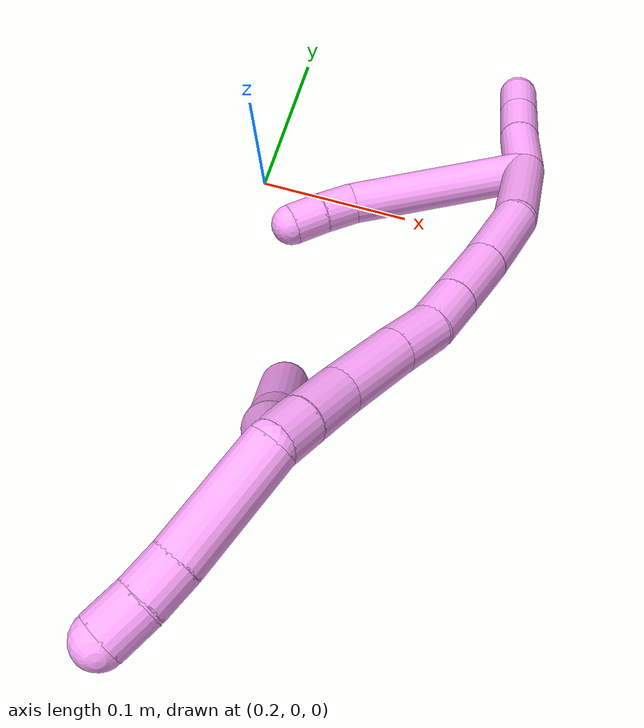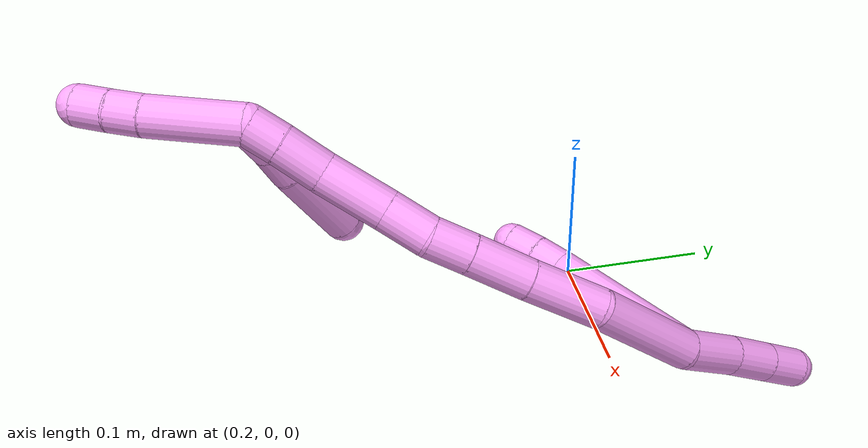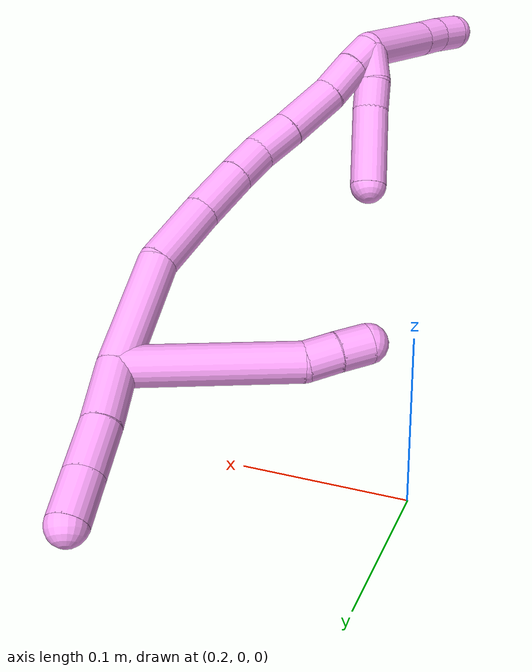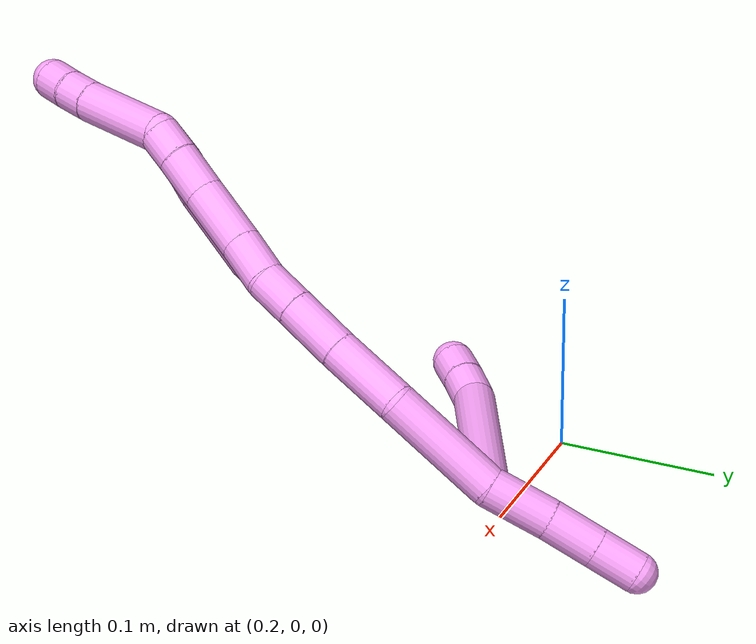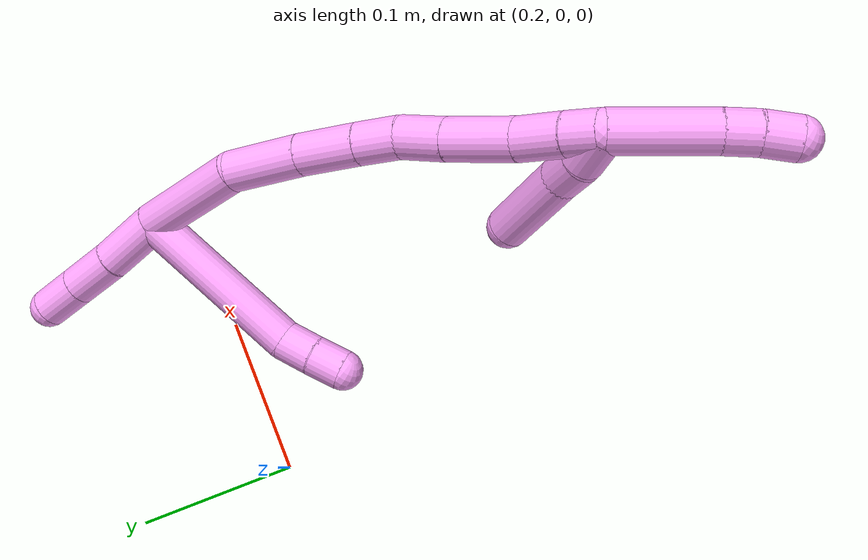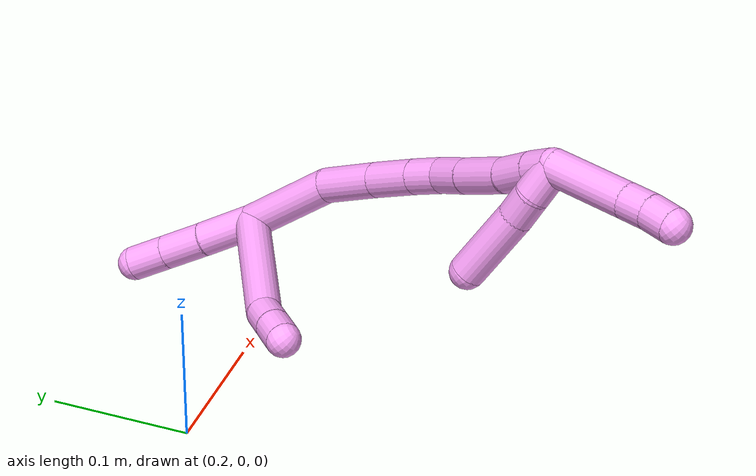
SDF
<sdf version="1.7">
 <world name="default">
  <model name="4">
   <static>0</static>
   <link name="4">
    <collision name="collision-cylinder-e_1_2_8">
     <pose>-0.007892 -0.053859 0.001302 1.54662 -0.145449 -0.141987</pose>
     <geometry><cylinder><radius>0.0125</radius><length>0.1089</length></cylinder></geometry>
     <surface>
      <friction><ode><mu>1.16</mu><mu2>1.16</mu2><slip1>0</slip1><slip2>0</slip2></ode></friction>
      <contact><ode><kp>1e+06</kp><kd>1</kd><max_vel>0</max_vel><min_depth>0.001</min_depth></ode></contact>
     </surface>
    </collision>
    <visual name="visual-cylinder-e_1_2_8">
     <pose>-0.007892 -0.053859 0.001302 1.54662 -0.145449 -0.141987</pose>
     <geometry><cylinder><radius>0.0125</radius><length>0.1089</length></cylinder></geometry>
     <material><ambient>1 0.65098 0.996078 1</ambient></material>
    </visual>
    <collision name="collision-cylinder-e_2_8_9">
     <pose>-0.017036 -0.117526 0.005836 1.25252 -0.120724 -0.087383</pose>
     <geometry><cylinder><radius>0.0125</radius><length>0.020804</length></cylinder></geometry>
     <surface>
      <friction><ode><mu>1.16</mu><mu2>1.16</mu2><slip1>0</slip1><slip2>0</slip2></ode></friction>
      <contact><ode><kp>1e+06</kp><kd>1</kd><max_vel>0</max_vel><min_depth>0.001</min_depth></ode></contact>
     </surface>
    </collision>
    <visual name="visual-cylinder-e_2_8_9">
     <pose>-0.017036 -0.117526 0.005836 1.25252 -0.120724 -0.087383</pose>
     <geometry><cylinder><radius>0.0125</radius><length>0.020804</length></cylinder></geometry>
     <material><ambient>1 0.65098 0.996078 1</ambient></material>
    </visual>
    <collision name="collision-cylinder-e_3_9_6">
     <pose>-0.018909 -0.137001 0.012091 1.26763 -0.061163 -0.04496</pose>
     <geometry><cylinder><radius>0.0125</radius><length>0.020296</length></cylinder></geometry>
     <surface>
      <friction><ode><mu>1.16</mu><mu2>1.16</mu2><slip1>0</slip1><slip2>0</slip2></ode></friction>
      <contact><ode><kp>1e+06</kp><kd>1</kd><max_vel>0</max_vel><min_depth>0.001</min_depth></ode></contact>
     </surface>
    </collision>
    <visual name="visual-cylinder-e_3_9_6">
     <pose>-0.018909 -0.137001 0.012091 1.26763 -0.061163 -0.04496</pose>
     <geometry><cylinder><radius>0.0125</radius><length>0.020296</length></cylinder></geometry>
     <material><ambient>1 0.65098 0.996078 1</ambient></material>
    </visual>
    <collision name="collision-cylinder-e_1_2_10">
     <pose>-0.004048 0.003961 -0.019162 -2.93776 -0.203997 1.57161</pose>
     <geometry><cylinder><radius>0.0125</radius><length>0.039962</length></cylinder></geometry>
     <surface>
      <friction><ode><mu>1.16</mu><mu2>1.16</mu2><slip1>0</slip1><slip2>0</slip2></ode></friction>
      <contact><ode><kp>1e+06</kp><kd>1</kd><max_vel>0</max_vel><min_depth>0.001</min_depth></ode></contact>
     </surface>
    </collision>
    <visual name="visual-cylinder-e_1_2_10">
     <pose>-0.004048 0.003961 -0.019162 -2.93776 -0.203997 1.57161</pose>
     <geometry><cylinder><radius>0.0125</radius><length>0.039962</length></cylinder></geometry>
     <material><ambient>1 0.65098 0.996078 1</ambient></material>
    </visual>
    <collision name="collision-cylinder-e_2_10_11">
     <pose>-0.010763 0.011961 -0.053492 -2.88132 -0.16831 1.14504</pose>
     <geometry><cylinder><radius>0.0125</radius><length>0.031845</length></cylinder></geometry>
     <surface>
      <friction><ode><mu>1.16</mu><mu2>1.16</mu2><slip1>0</slip1><slip2>0</slip2></ode></friction>
      <contact><ode><kp>1e+06</kp><kd>1</kd><max_vel>0</max_vel><min_depth>0.001</min_depth></ode></contact>
     </surface>
    </collision>
    <visual name="visual-cylinder-e_2_10_11">
     <pose>-0.010763 0.011961 -0.053492 -2.88132 -0.16831 1.14504</pose>
     <geometry><cylinder><radius>0.0125</radius><length>0.031845</length></cylinder></geometry>
     <material><ambient>1 0.65098 0.996078 1</ambient></material>
    </visual>
    <collision name="collision-cylinder-e_3_11_5">
     <pose>-0.015805 0.019569 -0.08209 -2.88188 -0.169304 1.15243</pose>
     <geometry><cylinder><radius>0.0125</radius><length>0.028193</length></cylinder></geometry>
     <surface>
      <friction><ode><mu>1.16</mu><mu2>1.16</mu2><slip1>0</slip1><slip2>0</slip2></ode></friction>
      <contact><ode><kp>1e+06</kp><kd>1</kd><max_vel>0</max_vel><min_depth>0.001</min_depth></ode></contact>
     </surface>
    </collision>
    <visual name="visual-cylinder-e_3_11_5">
     <pose>-0.015805 0.019569 -0.08209 -2.88188 -0.169304 1.15243</pose>
     <geometry><cylinder><radius>0.0125</radius><length>0.028193</length></cylinder></geometry>
     <material><ambient>1 0.65098 0.996078 1</ambient></material>
    </visual>
    <collision name="collision-cylinder-e_1_2_12">
     <pose>-0.000747 -0.010841 0.034449 0.304892 -0.02068 -0.003177</pose>
     <geometry><cylinder><radius>0.0125</radius><length>0.072245</length></cylinder></geometry>
     <surface>
      <friction><ode><mu>1.16</mu><mu2>1.16</mu2><slip1>0</slip1><slip2>0</slip2></ode></friction>
      <contact><ode><kp>1e+06</kp><kd>1</kd><max_vel>0</max_vel><min_depth>0.001</min_depth></ode></contact>
     </surface>
    </collision>
    <visual name="visual-cylinder-e_1_2_12">
     <pose>-0.000747 -0.010841 0.034449 0.304892 -0.02068 -0.003177</pose>
     <geometry><cylinder><radius>0.0125</radius><length>0.072245</length></cylinder></geometry>
     <material><ambient>1 0.65098 0.996078 1</ambient></material>
    </visual>
    <collision name="collision-cylinder-e_2_12_13">
     <pose>-0.000667 -0.03503 0.088146 0.606295 0.035292 0.01104</pose>
     <geometry><cylinder><radius>0.0125</radius><length>0.046876</length></cylinder></geometry>
     <surface>
      <friction><ode><mu>1.16</mu><mu2>1.16</mu2><slip1>0</slip1><slip2>0</slip2></ode></friction>
      <contact><ode><kp>1e+06</kp><kd>1</kd><max_vel>0</max_vel><min_depth>0.001</min_depth></ode></contact>
     </surface>
    </collision>
    <visual name="visual-cylinder-e_2_12_13">
     <pose>-0.000667 -0.03503 0.088146 0.606295 0.035292 0.01104</pose>
     <geometry><cylinder><radius>0.0125</radius><length>0.046876</length></cylinder></geometry>
     <material><ambient>1 0.65098 0.996078 1</ambient></material>
    </visual>
    <collision name="collision-cylinder-e_3_13_14">
     <pose>0.000319 -0.059566 0.122233 0.646106 0.008531 0.002856</pose>
     <geometry><cylinder><radius>0.0125</radius><length>0.03717</length></cylinder></geometry>
     <surface>
      <friction><ode><mu>1.16</mu><mu2>1.16</mu2><slip1>0</slip1><slip2>0</slip2></ode></friction>
      <contact><ode><kp>1e+06</kp><kd>1</kd><max_vel>0</max_vel><min_depth>0.001</min_depth></ode></contact>
     </surface>
    </collision>
    <visual name="visual-cylinder-e_3_13_14">
     <pose>0.000319 -0.059566 0.122233 0.646106 0.008531 0.002856</pose>
     <geometry><cylinder><radius>0.0125</radius><length>0.03717</length></cylinder></geometry>
     <material><ambient>1 0.65098 0.996078 1</ambient></material>
    </visual>
    <collision name="collision-cylinder-e_4_14_15">
     <pose>0.000706 -0.078721 0.147098 0.671345 0.017832 0.006221</pose>
     <geometry><cylinder><radius>0.0125</radius><length>0.025616</length></cylinder></geometry>
     <surface>
      <friction><ode><mu>1.16</mu><mu2>1.16</mu2><slip1>0</slip1><slip2>0</slip2></ode></friction>
      <contact><ode><kp>1e+06</kp><kd>1</kd><max_vel>0</max_vel><min_depth>0.001</min_depth></ode></contact>
     </surface>
    </collision>
    <visual name="visual-cylinder-e_4_14_15">
     <pose>0.000706 -0.078721 0.147098 0.671345 0.017832 0.006221</pose>
     <geometry><cylinder><radius>0.0125</radius><length>0.025616</length></cylinder></geometry>
     <material><ambient>1 0.65098 0.996078 1</ambient></material>
    </visual>
    <collision name="collision-cylinder-e_5_15_16">
     <pose>-0.000936 -0.096844 0.16672 0.813871 -0.133047 -0.057411</pose>
     <geometry><cylinder><radius>0.0125</radius><length>0.028195</length></cylinder></geometry>
     <surface>
      <friction><ode><mu>1.16</mu><mu2>1.16</mu2><slip1>0</slip1><slip2>0</slip2></ode></friction>
      <contact><ode><kp>1e+06</kp><kd>1</kd><max_vel>0</max_vel><min_depth>0.001</min_depth></ode></contact>
     </surface>
    </collision>
    <visual name="visual-cylinder-e_5_15_16">
     <pose>-0.000936 -0.096844 0.16672 0.813871 -0.133047 -0.057411</pose>
     <geometry><cylinder><radius>0.0125</radius><length>0.028195</length></cylinder></geometry>
     <material><ambient>1 0.65098 0.996078 1</ambient></material>
    </visual>
    <collision name="collision-cylinder-e_6_16_17">
     <pose>-0.005248 -0.121278 0.190999 0.771305 -0.118659 -0.048221</pose>
     <geometry><cylinder><radius>0.0125</radius><length>0.041251</length></cylinder></geometry>
     <surface>
      <friction><ode><mu>1.16</mu><mu2>1.16</mu2><slip1>0</slip1><slip2>0</slip2></ode></friction>
      <contact><ode><kp>1e+06</kp><kd>1</kd><max_vel>0</max_vel><min_depth>0.001</min_depth></ode></contact>
     </surface>
    </collision>
    <visual name="visual-cylinder-e_6_16_17">
     <pose>-0.005248 -0.121278 0.190999 0.771305 -0.118659 -0.048221</pose>
     <geometry><cylinder><radius>0.0125</radius><length>0.041251</length></cylinder></geometry>
     <material><ambient>1 0.65098 0.996078 1</ambient></material>
    </visual>
    <collision name="collision-cylinder-e_7_17_18">
     <pose>-0.009966 -0.144056 0.216846 0.650927 -0.160858 -0.054388</pose>
     <geometry><cylinder><radius>0.0125</radius><length>0.02843</length></cylinder></geometry>
     <surface>
      <friction><ode><mu>1.16</mu><mu2>1.16</mu2><slip1>0</slip1><slip2>0</slip2></ode></friction>
      <contact><ode><kp>1e+06</kp><kd>1</kd><max_vel>0</max_vel><min_depth>0.001</min_depth></ode></contact>
     </surface>
    </collision>
    <visual name="visual-cylinder-e_7_17_18">
     <pose>-0.009966 -0.144056 0.216846 0.650927 -0.160858 -0.054388</pose>
     <geometry><cylinder><radius>0.0125</radius><length>0.02843</length></cylinder></geometry>
     <material><ambient>1 0.65098 0.996078 1</ambient></material>
    </visual>
    <collision name="collision-cylinder-e_8_18_1">
     <pose>-0.013509 -0.15898 0.235713 0.694834 -0.125544 -0.045512</pose>
     <geometry><cylinder><radius>0.0125</radius><length>0.020219</length></cylinder></geometry>
     <surface>
      <friction><ode><mu>1.16</mu><mu2>1.16</mu2><slip1>0</slip1><slip2>0</slip2></ode></friction>
      <contact><ode><kp>1e+06</kp><kd>1</kd><max_vel>0</max_vel><min_depth>0.001</min_depth></ode></contact>
     </surface>
    </collision>
    <visual name="visual-cylinder-e_8_18_1">
     <pose>-0.013509 -0.15898 0.235713 0.694834 -0.125544 -0.045512</pose>
     <geometry><cylinder><radius>0.0125</radius><length>0.020219</length></cylinder></geometry>
     <material><ambient>1 0.65098 0.996078 1</ambient></material>
    </visual>
    <collision name="collision-cylinder-e_1_1_19">
     <pose>-0.005346 -0.188965 0.259347 0.976318 0.320097 0.171028</pose>
     <geometry><cylinder><radius>0.0125</radius><length>0.059929</length></cylinder></geometry>
     <surface>
      <friction><ode><mu>1.16</mu><mu2>1.16</mu2><slip1>0</slip1><slip2>0</slip2></ode></friction>
      <contact><ode><kp>1e+06</kp><kd>1</kd><max_vel>0</max_vel><min_depth>0.001</min_depth></ode></contact>
     </surface>
    </collision>
    <visual name="visual-cylinder-e_1_1_19">
     <pose>-0.005346 -0.188965 0.259347 0.976318 0.320097 0.171028</pose>
     <geometry><cylinder><radius>0.0125</radius><length>0.059929</length></cylinder></geometry>
     <material><ambient>1 0.65098 0.996078 1</ambient></material>
    </visual>
    <collision name="collision-cylinder-e_2_19_20">
     <pose>0.006647 -0.22063 0.280554 0.993586 0.259251 0.14111</pose>
     <geometry><cylinder><radius>0.0125</radius><length>0.020006</length></cylinder></geometry>
     <surface>
      <friction><ode><mu>1.16</mu><mu2>1.16</mu2><slip1>0</slip1><slip2>0</slip2></ode></friction>
      <contact><ode><kp>1e+06</kp><kd>1</kd><max_vel>0</max_vel><min_depth>0.001</min_depth></ode></contact>
     </surface>
    </collision>
    <visual name="visual-cylinder-e_2_19_20">
     <pose>0.006647 -0.22063 0.280554 0.993586 0.259251 0.14111</pose>
     <geometry><cylinder><radius>0.0125</radius><length>0.020006</length></cylinder></geometry>
     <material><ambient>1 0.65098 0.996078 1</ambient></material>
    </visual>
    <collision name="collision-cylinder-e_3_20_4">
     <pose>0.011465 -0.237419 0.290315 1.09417 0.226551 0.138364</pose>
     <geometry><cylinder><radius>0.0125</radius><length>0.020065</length></cylinder></geometry>
     <surface>
      <friction><ode><mu>1.16</mu><mu2>1.16</mu2><slip1>0</slip1><slip2>0</slip2></ode></friction>
      <contact><ode><kp>1e+06</kp><kd>1</kd><max_vel>0</max_vel><min_depth>0.001</min_depth></ode></contact>
     </surface>
    </collision>
    <visual name="visual-cylinder-e_3_20_4">
     <pose>0.011465 -0.237419 0.290315 1.09417 0.226551 0.138364</pose>
     <geometry><cylinder><radius>0.0125</radius><length>0.020065</length></cylinder></geometry>
     <material><ambient>1 0.65098 0.996078 1</ambient></material>
    </visual>
    <collision name="collision-cylinder-e_1_1_21">
     <pose>-0.011848 -0.166846 0.231673 3.01924 0.242427 2.20974</pose>
     <geometry><cylinder><radius>0.0125</radius><length>0.024379</length></cylinder></geometry>
     <surface>
      <friction><ode><mu>1.16</mu><mu2>1.16</mu2><slip1>0</slip1><slip2>0</slip2></ode></friction>
      <contact><ode><kp>1e+06</kp><kd>1</kd><max_vel>0</max_vel><min_depth>0.001</min_depth></ode></contact>
     </surface>
    </collision>
    <visual name="visual-cylinder-e_1_1_21">
     <pose>-0.011848 -0.166846 0.231673 3.01924 0.242427 2.20974</pose>
     <geometry><cylinder><radius>0.0125</radius><length>0.024379</length></cylinder></geometry>
     <material><ambient>1 0.65098 0.996078 1</ambient></material>
    </visual>
    <collision name="collision-cylinder-e_2_21_22">
     <pose>-0.005219 -0.167835 0.210187 -3.09491 0.362914 -2.88845</pose>
     <geometry><cylinder><radius>0.0125</radius><length>0.02086</length></cylinder></geometry>
     <surface>
      <friction><ode><mu>1.16</mu><mu2>1.16</mu2><slip1>0</slip1><slip2>0</slip2></ode></friction>
      <contact><ode><kp>1e+06</kp><kd>1</kd><max_vel>0</max_vel><min_depth>0.001</min_depth></ode></contact>
     </surface>
    </collision>
    <visual name="visual-cylinder-e_2_21_22">
     <pose>-0.005219 -0.167835 0.210187 -3.09491 0.362914 -2.88845</pose>
     <geometry><cylinder><radius>0.0125</radius><length>0.02086</length></cylinder></geometry>
     <material><ambient>1 0.65098 0.996078 1</ambient></material>
    </visual>
    <collision name="collision-cylinder-e_3_22_3">
     <pose>0.005656 -0.166812 0.17403 -3.12009 0.265059 -2.98067</pose>
     <geometry><cylinder><radius>0.0125</radius><length>0.05476</length></cylinder></geometry>
     <surface>
      <friction><ode><mu>1.16</mu><mu2>1.16</mu2><slip1>0</slip1><slip2>0</slip2></ode></friction>
      <contact><ode><kp>1e+06</kp><kd>1</kd><max_vel>0</max_vel><min_depth>0.001</min_depth></ode></contact>
     </surface>
    </collision>
    <visual name="visual-cylinder-e_3_22_3">
     <pose>0.005656 -0.166812 0.17403 -3.12009 0.265059 -2.98067</pose>
     <geometry><cylinder><radius>0.0125</radius><length>0.05476</length></cylinder></geometry>
     <material><ambient>1 0.65098 0.996078 1</ambient></material>
    </visual>
    <collision name="collision-sphere-3">
     <pose>0.012829 -0.166244 0.147612 0 -0 0</pose>
     <geometry><sphere><radius>0.0125</radius></sphere></geometry>
     <surface>
      <friction><ode><mu>1.16</mu><mu2>1.16</mu2><slip1>0</slip1><slip2>0</slip2></ode></friction>
      <contact><ode><kp>1e+06</kp><kd>1</kd><max_vel>0</max_vel><min_depth>0.001</min_depth></ode></contact>
     </surface>
    </collision>
    <visual name="visual-sphere-3">
     <pose>0.012829 -0.166244 0.147612 0 -0 0</pose>
     <geometry><sphere><radius>0.0125</radius></sphere></geometry>
     <material><ambient>1 0.65098 0.996078 1</ambient></material>
    </visual>
    <collision name="collision-sphere-22">
     <pose>-0.001517 -0.16738 0.200447 0 -0 0</pose>
     <geometry><sphere><radius>0.0125</radius></sphere></geometry>
     <surface>
      <friction><ode><mu>1.16</mu><mu2>1.16</mu2><slip1>0</slip1><slip2>0</slip2></ode></friction>
      <contact><ode><kp>1e+06</kp><kd>1</kd><max_vel>0</max_vel><min_depth>0.001</min_depth></ode></contact>
     </surface>
    </collision>
    <visual name="visual-sphere-22">
     <pose>-0.001517 -0.16738 0.200447 0 -0 0</pose>
     <geometry><sphere><radius>0.0125</radius></sphere></geometry>
     <material><ambient>1 0.65098 0.996078 1</ambient></material>
    </visual>
    <collision name="collision-sphere-21">
     <pose>-0.008922 -0.16829 0.219928 0 -0 0</pose>
     <geometry><sphere><radius>0.0125</radius></sphere></geometry>
     <surface>
      <friction><ode><mu>1.16</mu><mu2>1.16</mu2><slip1>0</slip1><slip2>0</slip2></ode></friction>
      <contact><ode><kp>1e+06</kp><kd>1</kd><max_vel>0</max_vel><min_depth>0.001</min_depth></ode></contact>
     </surface>
    </collision>
    <visual name="visual-sphere-21">
     <pose>-0.008922 -0.16829 0.219928 0 -0 0</pose>
     <geometry><sphere><radius>0.0125</radius></sphere></geometry>
     <material><ambient>1 0.65098 0.996078 1</ambient></material>
    </visual>
    <collision name="collision-sphere-4">
     <pose>0.013718 -0.246105 0.2948 0 -0 0</pose>
     <geometry><sphere><radius>0.0125</radius></sphere></geometry>
     <surface>
      <friction><ode><mu>1.16</mu><mu2>1.16</mu2><slip1>0</slip1><slip2>0</slip2></ode></friction>
      <contact><ode><kp>1e+06</kp><kd>1</kd><max_vel>0</max_vel><min_depth>0.001</min_depth></ode></contact>
     </surface>
    </collision>
    <visual name="visual-sphere-4">
     <pose>0.013718 -0.246105 0.2948 0 -0 0</pose>
     <geometry><sphere><radius>0.0125</radius></sphere></geometry>
     <material><ambient>1 0.65098 0.996078 1</ambient></material>
    </visual>
    <collision name="collision-sphere-20">
     <pose>0.009211 -0.228732 0.28583 0 -0 0</pose>
     <geometry><sphere><radius>0.0125</radius></sphere></geometry>
     <surface>
      <friction><ode><mu>1.16</mu><mu2>1.16</mu2><slip1>0</slip1><slip2>0</slip2></ode></friction>
      <contact><ode><kp>1e+06</kp><kd>1</kd><max_vel>0</max_vel><min_depth>0.001</min_depth></ode></contact>
     </surface>
    </collision>
    <visual name="visual-sphere-20">
     <pose>0.009211 -0.228732 0.28583 0 -0 0</pose>
     <geometry><sphere><radius>0.0125</radius></sphere></geometry>
     <material><ambient>1 0.65098 0.996078 1</ambient></material>
    </visual>
    <collision name="collision-sphere-11">
     <pose>-0.01343 0.016001 -0.068661 0 -0 0</pose>
     <geometry><sphere><radius>0.0125</radius></sphere></geometry>
     <surface>
      <friction><ode><mu>1.16</mu><mu2>1.16</mu2><slip1>0</slip1><slip2>0</slip2></ode></friction>
      <contact><ode><kp>1e+06</kp><kd>1</kd><max_vel>0</max_vel><min_depth>0.001</min_depth></ode></contact>
     </surface>
    </collision>
    <visual name="visual-sphere-11">
     <pose>-0.01343 0.016001 -0.068661 0 -0 0</pose>
     <geometry><sphere><radius>0.0125</radius></sphere></geometry>
     <material><ambient>1 0.65098 0.996078 1</ambient></material>
    </visual>
    <collision name="collision-sphere-10">
     <pose>-0.008096 0.007922 -0.038323 0 -0 0</pose>
     <geometry><sphere><radius>0.0125</radius></sphere></geometry>
     <surface>
      <friction><ode><mu>1.16</mu><mu2>1.16</mu2><slip1>0</slip1><slip2>0</slip2></ode></friction>
      <contact><ode><kp>1e+06</kp><kd>1</kd><max_vel>0</max_vel><min_depth>0.001</min_depth></ode></contact>
     </surface>
    </collision>
    <visual name="visual-sphere-10">
     <pose>-0.008096 0.007922 -0.038323 0 -0 0</pose>
     <geometry><sphere><radius>0.0125</radius></sphere></geometry>
     <material><ambient>1 0.65098 0.996078 1</ambient></material>
    </visual>
    <collision name="collision-sphere-6">
     <pose>-0.01953 -0.146668 0.015115 0 -0 0</pose>
     <geometry><sphere><radius>0.0125</radius></sphere></geometry>
     <surface>
      <friction><ode><mu>1.16</mu><mu2>1.16</mu2><slip1>0</slip1><slip2>0</slip2></ode></friction>
      <contact><ode><kp>1e+06</kp><kd>1</kd><max_vel>0</max_vel><min_depth>0.001</min_depth></ode></contact>
     </surface>
    </collision>
    <visual name="visual-sphere-6">
     <pose>-0.01953 -0.146668 0.015115 0 -0 0</pose>
     <geometry><sphere><radius>0.0125</radius></sphere></geometry>
     <material><ambient>1 0.65098 0.996078 1</ambient></material>
    </visual>
    <collision name="collision-sphere-9">
     <pose>-0.018289 -0.127334 0.009067 0 -0 0</pose>
     <geometry><sphere><radius>0.0125</radius></sphere></geometry>
     <surface>
      <friction><ode><mu>1.16</mu><mu2>1.16</mu2><slip1>0</slip1><slip2>0</slip2></ode></friction>
      <contact><ode><kp>1e+06</kp><kd>1</kd><max_vel>0</max_vel><min_depth>0.001</min_depth></ode></contact>
     </surface>
    </collision>
    <visual name="visual-sphere-9">
     <pose>-0.018289 -0.127334 0.009067 0 -0 0</pose>
     <geometry><sphere><radius>0.0125</radius></sphere></geometry>
     <material><ambient>1 0.65098 0.996078 1</ambient></material>
    </visual>
    <collision name="collision-sphere-2">
     <geometry><sphere><radius>0.0125</radius></sphere></geometry>
     <surface>
      <friction><ode><mu>1.16</mu><mu2>1.16</mu2><slip1>0</slip1><slip2>0</slip2></ode></friction>
      <contact><ode><kp>1e+06</kp><kd>1</kd><max_vel>0</max_vel><min_depth>0.001</min_depth></ode></contact>
     </surface>
    </collision>
    <visual name="visual-sphere-2">
     <geometry><sphere><radius>0.0125</radius></sphere></geometry>
     <material><ambient>1 0.65098 0.996078 1</ambient></material>
    </visual>
    <collision name="collision-sphere-19">
     <pose>0.004083 -0.212528 0.275277 0 -0 0</pose>
     <geometry><sphere><radius>0.0125</radius></sphere></geometry>
     <surface>
      <friction><ode><mu>1.16</mu><mu2>1.16</mu2><slip1>0</slip1><slip2>0</slip2></ode></friction>
      <contact><ode><kp>1e+06</kp><kd>1</kd><max_vel>0</max_vel><min_depth>0.001</min_depth></ode></contact>
     </surface>
    </collision>
    <visual name="visual-sphere-19">
     <pose>0.004083 -0.212528 0.275277 0 -0 0</pose>
     <geometry><sphere><radius>0.0125</radius></sphere></geometry>
     <material><ambient>1 0.65098 0.996078 1</ambient></material>
    </visual>
    <collision name="collision-sphere-8">
     <pose>-0.015784 -0.107718 0.002604 0 -0 0</pose>
     <geometry><sphere><radius>0.0125</radius></sphere></geometry>
     <surface>
      <friction><ode><mu>1.16</mu><mu2>1.16</mu2><slip1>0</slip1><slip2>0</slip2></ode></friction>
      <contact><ode><kp>1e+06</kp><kd>1</kd><max_vel>0</max_vel><min_depth>0.001</min_depth></ode></contact>
     </surface>
    </collision>
    <visual name="visual-sphere-8">
     <pose>-0.015784 -0.107718 0.002604 0 -0 0</pose>
     <geometry><sphere><radius>0.0125</radius></sphere></geometry>
     <material><ambient>1 0.65098 0.996078 1</ambient></material>
    </visual>
    <collision name="collision-sphere-5">
     <pose>-0.018181 0.023138 -0.095519 0 -0 0</pose>
     <geometry><sphere><radius>0.0125</radius></sphere></geometry>
     <surface>
      <friction><ode><mu>1.16</mu><mu2>1.16</mu2><slip1>0</slip1><slip2>0</slip2></ode></friction>
      <contact><ode><kp>1e+06</kp><kd>1</kd><max_vel>0</max_vel><min_depth>0.001</min_depth></ode></contact>
     </surface>
    </collision>
    <visual name="visual-sphere-5">
     <pose>-0.018181 0.023138 -0.095519 0 -0 0</pose>
     <geometry><sphere><radius>0.0125</radius></sphere></geometry>
     <material><ambient>1 0.65098 0.996078 1</ambient></material>
    </visual>
    <collision name="collision-sphere-12">
     <pose>-0.001494 -0.021682 0.068898 0 -0 0</pose>
     <geometry><sphere><radius>0.0125</radius></sphere></geometry>
     <surface>
      <friction><ode><mu>1.16</mu><mu2>1.16</mu2><slip1>0</slip1><slip2>0</slip2></ode></friction>
      <contact><ode><kp>1e+06</kp><kd>1</kd><max_vel>0</max_vel><min_depth>0.001</min_depth></ode></contact>
     </surface>
    </collision>
    <visual name="visual-sphere-12">
     <pose>-0.001494 -0.021682 0.068898 0 -0 0</pose>
     <geometry><sphere><radius>0.0125</radius></sphere></geometry>
     <material><ambient>1 0.65098 0.996078 1</ambient></material>
    </visual>
    <collision name="collision-sphere-13">
     <pose>0.00016 -0.048377 0.107395 0 -0 0</pose>
     <geometry><sphere><radius>0.0125</radius></sphere></geometry>
     <surface>
      <friction><ode><mu>1.16</mu><mu2>1.16</mu2><slip1>0</slip1><slip2>0</slip2></ode></friction>
      <contact><ode><kp>1e+06</kp><kd>1</kd><max_vel>0</max_vel><min_depth>0.001</min_depth></ode></contact>
     </surface>
    </collision>
    <visual name="visual-sphere-13">
     <pose>0.00016 -0.048377 0.107395 0 -0 0</pose>
     <geometry><sphere><radius>0.0125</radius></sphere></geometry>
     <material><ambient>1 0.65098 0.996078 1</ambient></material>
    </visual>
    <collision name="collision-sphere-14">
     <pose>0.000477 -0.070755 0.137071 0 -0 0</pose>
     <geometry><sphere><radius>0.0125</radius></sphere></geometry>
     <surface>
      <friction><ode><mu>1.16</mu><mu2>1.16</mu2><slip1>0</slip1><slip2>0</slip2></ode></friction>
      <contact><ode><kp>1e+06</kp><kd>1</kd><max_vel>0</max_vel><min_depth>0.001</min_depth></ode></contact>
     </surface>
    </collision>
    <visual name="visual-sphere-14">
     <pose>0.000477 -0.070755 0.137071 0 -0 0</pose>
     <geometry><sphere><radius>0.0125</radius></sphere></geometry>
     <material><ambient>1 0.65098 0.996078 1</ambient></material>
    </visual>
    <collision name="collision-sphere-15">
     <pose>0.000934 -0.086687 0.157125 0 -0 0</pose>
     <geometry><sphere><radius>0.0125</radius></sphere></geometry>
     <surface>
      <friction><ode><mu>1.16</mu><mu2>1.16</mu2><slip1>0</slip1><slip2>0</slip2></ode></friction>
      <contact><ode><kp>1e+06</kp><kd>1</kd><max_vel>0</max_vel><min_depth>0.001</min_depth></ode></contact>
     </surface>
    </collision>
    <visual name="visual-sphere-15">
     <pose>0.000934 -0.086687 0.157125 0 -0 0</pose>
     <geometry><sphere><radius>0.0125</radius></sphere></geometry>
     <material><ambient>1 0.65098 0.996078 1</ambient></material>
    </visual>
    <collision name="collision-sphere-16">
     <pose>-0.002806 -0.107002 0.176315 0 -0 0</pose>
     <geometry><sphere><radius>0.0125</radius></sphere></geometry>
     <surface>
      <friction><ode><mu>1.16</mu><mu2>1.16</mu2><slip1>0</slip1><slip2>0</slip2></ode></friction>
      <contact><ode><kp>1e+06</kp><kd>1</kd><max_vel>0</max_vel><min_depth>0.001</min_depth></ode></contact>
     </surface>
    </collision>
    <visual name="visual-sphere-16">
     <pose>-0.002806 -0.107002 0.176315 0 -0 0</pose>
     <geometry><sphere><radius>0.0125</radius></sphere></geometry>
     <material><ambient>1 0.65098 0.996078 1</ambient></material>
    </visual>
    <collision name="collision-sphere-17">
     <pose>-0.00769 -0.135554 0.205684 0 -0 0</pose>
     <geometry><sphere><radius>0.0125</radius></sphere></geometry>
     <surface>
      <friction><ode><mu>1.16</mu><mu2>1.16</mu2><slip1>0</slip1><slip2>0</slip2></ode></friction>
      <contact><ode><kp>1e+06</kp><kd>1</kd><max_vel>0</max_vel><min_depth>0.001</min_depth></ode></contact>
     </surface>
    </collision>
    <visual name="visual-sphere-17">
     <pose>-0.00769 -0.135554 0.205684 0 -0 0</pose>
     <geometry><sphere><radius>0.0125</radius></sphere></geometry>
     <material><ambient>1 0.65098 0.996078 1</ambient></material>
    </visual>
    <collision name="collision-sphere-18">
     <pose>-0.012243 -0.152558 0.228008 0 -0 0</pose>
     <geometry><sphere><radius>0.0125</radius></sphere></geometry>
     <surface>
      <friction><ode><mu>1.16</mu><mu2>1.16</mu2><slip1>0</slip1><slip2>0</slip2></ode></friction>
      <contact><ode><kp>1e+06</kp><kd>1</kd><max_vel>0</max_vel><min_depth>0.001</min_depth></ode></contact>
     </surface>
    </collision>
    <visual name="visual-sphere-18">
     <pose>-0.012243 -0.152558 0.228008 0 -0 0</pose>
     <geometry><sphere><radius>0.0125</radius></sphere></geometry>
     <material><ambient>1 0.65098 0.996078 1</ambient></material>
    </visual>
    <collision name="collision-sphere-1">
     <pose>-0.014775 -0.165402 0.243417 0 -0 0</pose>
     <geometry><sphere><radius>0.0125</radius></sphere></geometry>
     <surface>
      <friction><ode><mu>1.16</mu><mu2>1.16</mu2><slip1>0</slip1><slip2>0</slip2></ode></friction>
      <contact><ode><kp>1e+06</kp><kd>1</kd><max_vel>0</max_vel><min_depth>0.001</min_depth></ode></contact>
     </surface>
    </collision>
    <visual name="visual-sphere-1">
     <pose>-0.014775 -0.165402 0.243417 0 -0 0</pose>
     <geometry><sphere><radius>0.0125</radius></sphere></geometry>
     <material><ambient>1 0.65098 0.996078 1</ambient></material>
    </visual>
    <inertial>
     <pose>-0.004597 -0.091873 0.107614 0 -0 0</pose>
     <mass>0.75</mass>
     <inertia>
      <ixx>0.000186</ixx>
      <ixy>0</ixy>
      <ixz>0</ixz>
      <iyy>6.4e-05</iyy>
      <iyz>0</iyz>
      <izz>0.000178</izz>
     </inertia>
    </inertial>
   </link>
   <pose>0.369651 0.020776 0.063157 0.220199 0.820815 -0.858296</pose>
  </model>
 </world>
</sdf>
